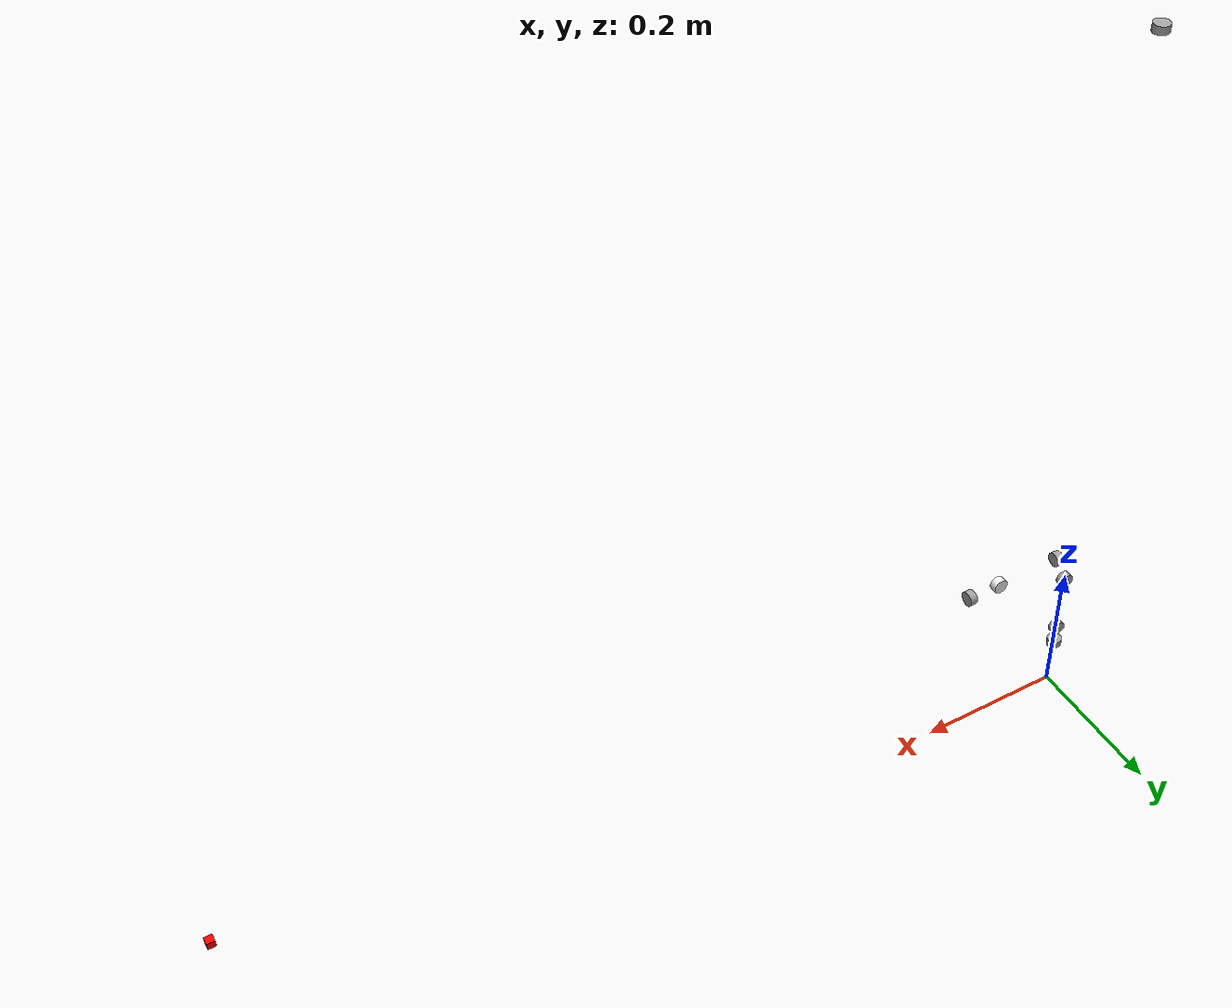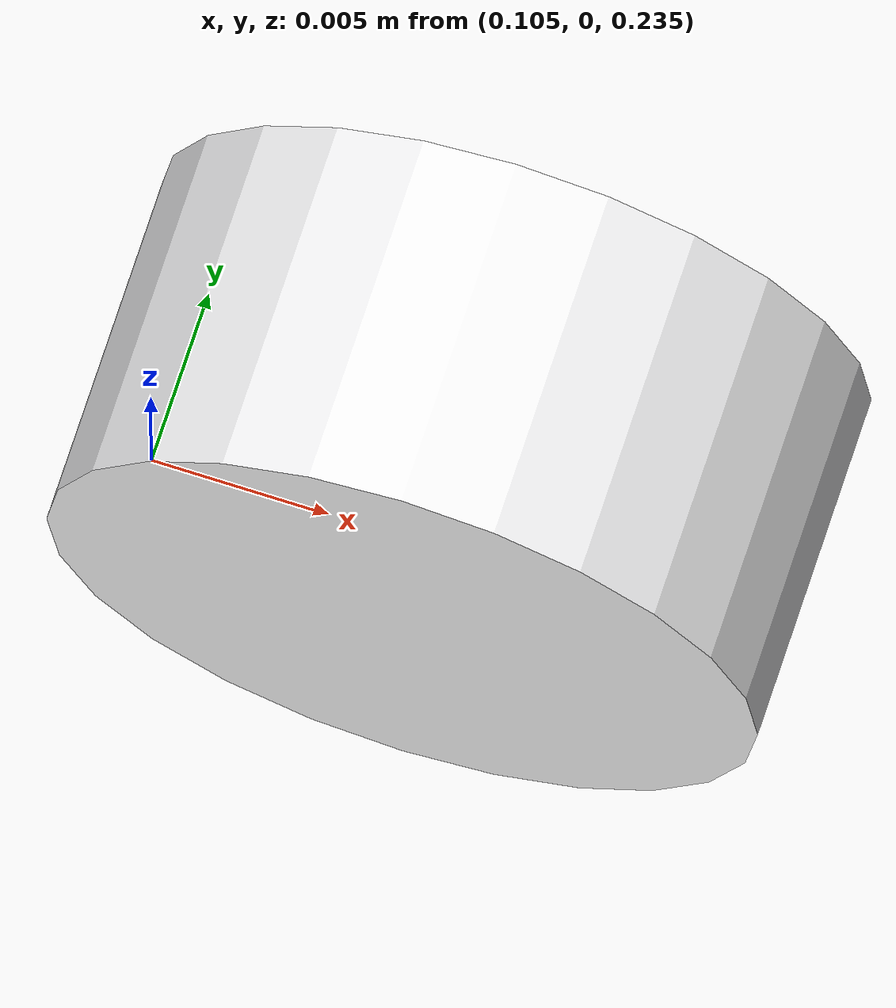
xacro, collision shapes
<?xml version="1.0"?>
<robot xmlns:xacro="http://www.ros.org/wiki/xacro" name="ROBOv2">

    <!-- Used for fixing robot to Gazebo 'base_link' 将机械手的基座固定在世界坐标上-->
    <link name="world"/>
    <joint name="fixed" type="fixed">
        <parent link="world"/>
        <child link="base_link"/>
    </joint>

    <xacro:include filename="$(find ROBOv2)/urdf/ROBOv2gazebo.urdf" />

    <!-- 对一些link进行gazebo的属性设置 -->
    <gazebo reference="base_link">
        <material>Gazebo/Purple</material>
        <self_collide>false</self_collide>
        <gravity>false</gravity>
    </gazebo>
    <gazebo reference="link1">
        <material>Gazebo/Purple</material>
        <self_collide>false</self_collide>
        <gravity>false</gravity>
    </gazebo>
    <gazebo reference="link2">
        <material>Gazebo/Red</material>
        <self_collide>false</self_collide>
        <gravity>false</gravity>
    </gazebo>
    <gazebo reference="link3">
        <material>Gazebo/Blue</material>
        <self_collide>false</self_collide>
        <gravity>false</gravity>
    </gazebo>
    <gazebo reference="link4">
        <material>Gazebo/Green</material>
        <self_collide>false</self_collide>
        <gravity>false</gravity>
    </gazebo>
    <gazebo reference="link5">
        <material>Gazebo/Yellow</material>
        <self_collide>false</self_collide>
        <gravity>false</gravity>
    </gazebo>
    <gazebo reference="link6">
        <material>Gazebo/Orange</material>
        <self_collide>false</self_collide>
        <gravity>false</gravity>
    </gazebo>

    <!-- 设置不了静态，不知为啥 -->
    <gazebo>
        <is_static>true</is_static>
        <self_collide>false</self_collide>
    </gazebo>

            <ros2_control name="GazeboSystem" type="system">
            <hardware>
                <!-- By default, set up controllers for simulation. This won't work on real hardware -->
                <plugin>gazebo_ros2_control/GazeboSystem</plugin>
            </hardware>
            <joint name="joint1">
                <command_interface name="position"/>
                <state_interface name="position">
                  <param name="initial_value">0</param>
                </state_interface>
                <state_interface name="velocity"/>
            </joint>
            <joint name="joint2">
                <command_interface name="position"/>
                <state_interface name="position">
                  <param name="initial_value">0</param>
                </state_interface>
                <state_interface name="velocity"/>
            </joint>
            <joint name="joint3">
                <command_interface name="position"/>
                <state_interface name="position">
                  <param name="initial_value">0</param>
                </state_interface>
                <state_interface name="velocity"/>
            </joint>
            <joint name="joint4">
                <command_interface name="position"/>
                <state_interface name="position">
                  <param name="initial_value">0</param>
                </state_interface>
                <state_interface name="velocity"/>
            </joint>
            <joint name="joint5">
                <command_interface name="position"/>
                <state_interface name="position">
                  <param name="initial_value">0</param>
                </state_interface>
                <state_interface name="velocity"/>
            </joint>
            <joint name="joint6">
                <command_interface name="position"/>
                <state_interface name="position">
                  <param name="initial_value">0</param>
                </state_interface>
                <state_interface name="velocity"/>
            </joint>

        </ros2_control>

        <gazebo>
            <plugin name="gazebo_ros2_control" filename="libgazebo_ros2_control.so">
                <parameters>$(find mybot)/config/ros2_controllers.yaml</parameters>
                <robot_param>robot_description</robot_param>
                <robot_param_node>robot_state_publisher</robot_param_node>
            </plugin>
        </gazebo>

</robot>

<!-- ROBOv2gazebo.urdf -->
<robot
  name="ROBOv2">
  <link
    name="base_link">
    <inertial>
      <origin
        xyz="0.000123937909243916 8.4765149139705E-07 0.0373948118449706"
        rpy="0 0 0" />
      <mass
        value="0.129198992435756" />
      <inertia
        ixx="0"
        ixy="0"
        ixz="0"
        iyy="0"
        iyz="0"
        izz="0" />
    </inertial>
    <visual>
      <origin
        xyz="0 0 0"
        rpy="0 0 0" />
      <geometry>
        <mesh
          filename="file://$(find ROBOv2)/meshes/base_link.STL" />
      </geometry>
      <material
        name="">
        <color
          rgba="0.627450980392157 0.627450980392157 0.627450980392157 1" />
      </material>
    </visual>
    <collision>
      <origin
        xyz="0 0 1"
        rpy="0 0 0" />
      <geometry>
        <cylinder
          radius="0.01"
          length="0.01" />
      </geometry>
    </collision>
  </link>
  <link
    name="link1">
    <inertial>
      <origin
        xyz="1.43861340415614E-05 -0.00350542798523779 0.0168361695340248"
        rpy="0 0 0" />
      <mass
        value="0.135124042145669" />
      <inertia
        ixx="4.14837520709199E-05"
        ixy="-7.09562020474561E-10"
        ixz="5.34427272937233E-09"
        iyy="6.0260311153484E-05"
        iyz="-2.53028163395366E-07"
        izz="5.79394572859317E-05" />
    </inertial>
    <visual>
      <origin
        xyz="0 0 0"
        rpy="0 0 0" />
      <geometry>
        <mesh
          filename="file://$(find ROBOv2)/meshes/link1.STL" />
      </geometry>
      <material
        name="">
        <color
          rgba="0.627450980392157 0.627450980392157 0.627450980392157 1" />
      </material>
    </visual>
    <collision>
      <origin
        xyz="0 0 0"
        rpy="0 0 0" />
      <geometry>
        <cylinder
          radius="0.01"
          length="0.01" />
      </geometry>
    </collision>
  </link>
  <joint
    name="joint1"
    type="revolute">
    <origin
      xyz="0 0 0.0750000000000569"
      rpy="0 0 0" />
    <parent
      link="base_link" />
    <child
      link="link1" />
    <axis
      xyz="0 0 1" />
    <limit
      lower="0"
      upper="3.14"
      effort="0"
      velocity="0" />
  </joint>
  <link
    name="link2">
    <inertial>
      <origin
        xyz="1.24161190220815E-05 -0.0501965424910991 -0.000609565825088086"
        rpy="0 0 0" />
      <mass
        value="0.155568086368024" />
      <inertia
        ixx="6.31144933853733E-05"
        ixy="-3.80613250733799E-11"
        ixz="-3.42419632538152E-10"
        iyy="3.99778418420942E-05"
        iyz="-3.12314684955805E-06"
        izz="8.08376649580164E-05" />
    </inertial>
    <visual>
      <origin
        xyz="0 0 0"
        rpy="0 0 0" />
      <geometry>
        <mesh
          filename="file://$(find ROBOv2)/meshes/link2.STL" />
      </geometry>
      <material
        name="">
        <color
          rgba="0.627450980392157 0.627450980392157 0.627450980392157 1" />
      </material>
    </visual>
    <collision>
      <origin
        xyz="0 0 0"
        rpy="0 0 0" />
      <geometry>
        <cylinder
          radius="0.01"
          length="0.01" />
      </geometry>
    </collision>
  </link>
  <joint
    name="joint2"
    type="revolute">
    <origin
      xyz="0 0 0.0275499999999431"
      rpy="-1.5707963267949 0 0" />
    <parent
      link="link1" />
    <child
      link="link2" />
    <axis
      xyz="0 0 -1" />
    <limit
      lower="0"
      upper="3.14"
      effort="0"
      velocity="0" />
  </joint>
  <link
    name="link3">
    <inertial>
      <origin
        xyz="-0.0134759326284379 -0.0397279385467914 -0.00615339651949477"
        rpy="0 0 0" />
      <mass
        value="0.0706931108436309" />
      <inertia
        ixx="2.0957855975173E-05"
        ixy="-3.18342751503296E-06"
        ixz="1.11712400797395E-06"
        iyy="1.3047718793099E-05"
        iyz="4.38717094558408E-06"
        izz="2.03918242916651E-05" />
    </inertial>
    <visual>
      <origin
        xyz="0 0 0"
        rpy="0 0 0" />
      <geometry>
        <mesh
          filename="file://$(find ROBOv2)/meshes/link3.STL" />
      </geometry>
      <material
        name="">
        <color
          rgba="0.627450980392157 0.627450980392157 0.627450980392157 1" />
      </material>
    </visual>
    <collision>
      <origin
        xyz="0 0 0"
        rpy="0 0 0" />
      <geometry>
        <cylinder
          radius="0.01"
          length="0.01" />
      </geometry>
    </collision>
  </link>
  <joint
    name="joint3"
    type="revolute">
    <origin
      xyz="0 -0.091 0"
      rpy="0 0 0" />
    <parent
      link="link2" />
    <child
      link="link3" />
    <axis
      xyz="0 0 -1" />
    <limit
      lower="0"
      upper="3.14"
      effort="0"
      velocity="0" />
  </joint>
  <link
    name="link4">
    <inertial>
      <origin
        xyz="1.43754558257214E-09 -0.000773219571640073 0.0377594897118048"
        rpy="0 0 0" />
      <mass
        value="0.0595055377002401" />
      <inertia
        ixx="2.3777353621544E-05"
        ixy="-4.49566704539174E-13"
        ixz="4.06262004603906E-12"
        iyy="2.42761648797602E-05"
        iyz="1.42802618650093E-06"
        izz="8.61432457030409E-06" />
    </inertial>
    <visual>
      <origin
        xyz="0 0 0"
        rpy="0 0 0" />
      <geometry>
        <mesh
          filename="file://$(find ROBOv2)/meshes/link4.STL" />
      </geometry>
      <material
        name="">
        <color
          rgba="0.627450980392157 0.627450980392157 0.627450980392157 1" />
      </material>
    </visual>
    <collision>
      <origin
        xyz="0 0 0"
        rpy="0 0 0" />
      <geometry>
        <cylinder
          radius="0.01"
          length="0.01" />
      </geometry>
    </collision>
  </link>
  <joint
    name="joint4"
    type="revolute">
    <origin
      xyz="0.021 -0.049000000000057 0"
      rpy="-1.5707963267949 0 -1.5707963267949" />
    <parent
      link="link3" />
    <child
      link="link4" />
    <axis
      xyz="0 0 -1" />
    <limit
      lower="0"
      upper="3.14"
      effort="0"
      velocity="0" />
  </joint>
  <link
    name="link5">
    <inertial>
      <origin
        xyz="0.0266710461694476 -0.000127640614283359 -0.00359575669754987"
        rpy="0 0 0" />
      <mass
        value="0.0152811495589073" />
      <inertia
        ixx="9.52286289917837E-07"
        ixy="5.37530916338645E-10"
        ixz="-1.31831135365834E-07"
        iyy="2.51952311871716E-06"
        iyz="-9.01737283475658E-13"
        izz="2.65851744966292E-06" />
    </inertial>
    <visual>
      <origin
        xyz="0 0 0"
        rpy="0 0 0" />
      <geometry>
        <mesh
          filename="file://$(find ROBOv2)/meshes/link5.STL" />
      </geometry>
      <material
        name="">
        <color
          rgba="0.96078431372549 0.96078431372549 0.964705882352941 1" />
      </material>
    </visual>
    <collision>
      <origin
        xyz="0 0 0"
        rpy="0 0 0" />
      <geometry>
        <cylinder
          radius="0.01"
          length="0.01" />
      </geometry>
    </collision>
  </link>
  <joint
    name="joint5"
    type="revolute">
    <origin
      xyz="0 0 0.0927"
      rpy="1.5707963267949 -1.5707963267949 0" />
    <parent
      link="link4" />
    <child
      link="link5" />
    <axis
      xyz="0 0 1" />
    <limit
      lower="0"
      upper="3.14"
      effort="0"
      velocity="0" />
  </joint>
  <link
    name="link6">
    <inertial>
      <origin
        xyz="-0.000193405535626606 -0.000435778410579226 0.0334396807455861"
        rpy="0 0 0" />
      <mass
        value="0.0176750948998686" />
      <inertia
        ixx="3.7805850683409E-06"
        ixy="-2.22787441588436E-10"
        ixz="-6.79858868750768E-08"
        iyy="2.51877469055783E-06"
        iyz="4.21287523555918E-08"
        izz="1.9909376137199E-06" />
    </inertial>
    <visual>
      <origin
        xyz="0 0 0"
        rpy="0 0 0" />
      <geometry>
        <mesh
          filename="file://$(find ROBOv2)/meshes/link6.STL" />
      </geometry>
      <material
        name="">
        <color
          rgba="0.627450980392157 0.627450980392157 0.627450980392157 1" />
      </material>
    </visual>
    <collision>
      <origin
        xyz="0 0 0"
        rpy="0 0 0" />
      <geometry>
        <cylinder
          radius="0.01"
          length="0.01" />
      </geometry>
    </collision>
  </link>
  <joint
    name="joint6"
    type="revolute">
    <origin
      xyz="0.04575 0 0"
      rpy="-1.5708 0 -1.5708" />
    <parent
      link="link5" />
    <child
      link="link6" />
    <axis
      xyz="0 0 1" />
    <limit
      lower="0"
      upper="3.14"
      effort="0"
      velocity="0" />
  </joint>
  <!--camera_link-->
  <link name = "camera_link">
    <collision>
      <origin
        xyz="0 0 1"
        rpy="0 0 0" />
      <geometry>
        <box size="0.01 0.01 0.01"/>
      </geometry>
    </collision>
    <visual>
      <geometry>
        <box size="0.05 0.05 0.05"/>
      </geometry>
      <material name="red">
        <color rgba="1 0 0 1"/>
      </material>
    </visual>
    <inertia>
      <origin xyz="0 0 0" rpy="0 0 0"/>
      <mass value="0.01"/>
      <inertia ixx="0.0001" ixy="0.0" ixz="0.0" iyy="0.0001" iyz="0.0" izz="0.0001"/>
    </inertia>
  </link>
  <joint name="camera_joint" type="fixed">
    <origin xyz="0 0 0" rpy="0 0 0"/>
    <parent link="link6"/>
    <child link="camera_link"/>
  </joint>
</robot>
